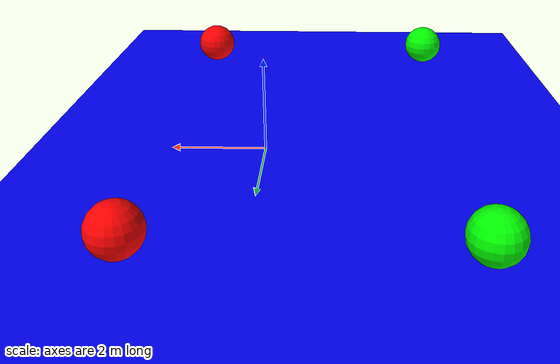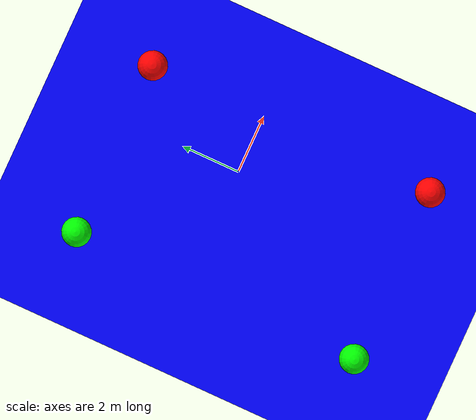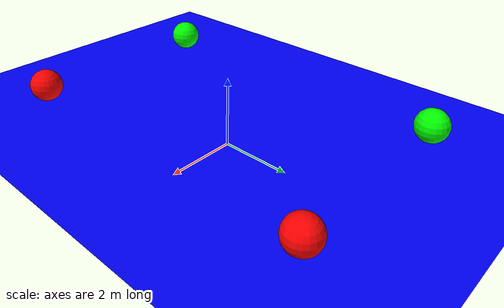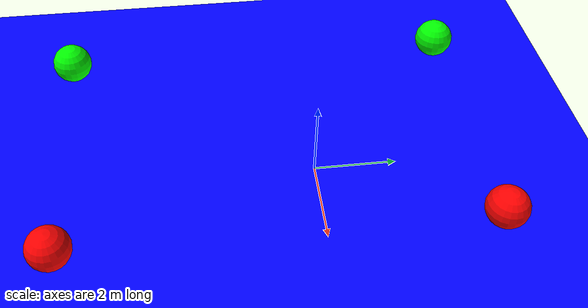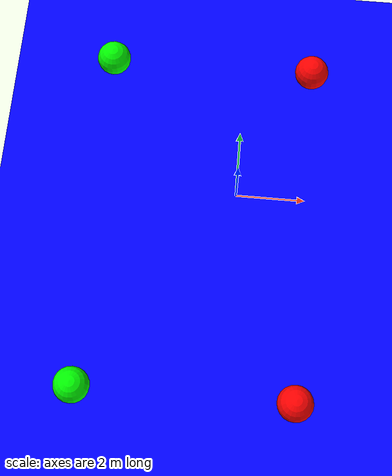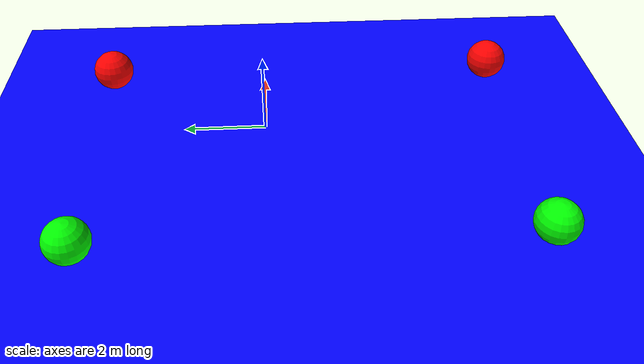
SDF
<sdf version='1.9'>
  <world name='task-1'>
    <physics name='1ms' type='ode'>
      <max_step_size>0.001</max_step_size>
      <real_time_factor>1</real_time_factor>
      <real_time_update_rate>1000</real_time_update_rate>
    </physics>
    <plugin name='ignition::gazebo::systems::Physics' filename='ignition-gazebo-physics-system'/>
    <plugin name='ignition::gazebo::systems::UserCommands' filename='ignition-gazebo-user-commands-system'/>
    <plugin name='ignition::gazebo::systems::SceneBroadcaster' filename='ignition-gazebo-scene-broadcaster-system'/>
    <plugin name='ignition::gazebo::systems::Buoyancy' filename='ignition-gazebo-buoyancy-system'>
      <graded_buoyancy>
        <default_density>1000</default_density>
        <density_change>
          <above_depth>0</above_depth>
          <density>1</density>
        </density_change>
      </graded_buoyancy>
      <enable>sphere</enable>
      <enable>sphere_0</enable>
      <enable>sphere_1</enable>
      <enable>sphere_2</enable>
    </plugin>
    <gravity>0 0 -9.8</gravity>
    <magnetic_field>6e-06 2.3e-05 -4.2e-05</magnetic_field>
    <atmosphere type='adiabatic'/>
    <scene>
      <ambient>0.4 0.4 0.4 1</ambient>
      <background>0.7 0.7 0.7 1</background>
      <shadows>true</shadows>
    </scene>
    <model name='water_plane'>
      <static>true</static>
      <link name='link'>
        <visual name='water_plane'>
          <geometry>
            <plane>
              <size>100 100</size>
              <normal>0 0 1</normal>
            </plane>
          </geometry>
          <material>
            <ambient>0 0 1 0.5</ambient>
            <diffuse>0 0 1 0.5</diffuse>
            <specular>0 0 1 0.5</specular>
          </material>
        </visual>
        <pose>0 0 0 0 -0 0</pose>
        <inertial>
          <pose>0 0 0 0 -0 0</pose>
          <mass>1</mass>
          <inertia>
            <ixx>1</ixx>
            <ixy>0</ixy>
            <ixz>0</ixz>
            <iyy>1</iyy>
            <iyz>0</iyz>
            <izz>1</izz>
          </inertia>
        </inertial>
        <enable_wind>false</enable_wind>
      </link>
      <pose>0 0 0 0 -0 0</pose>
      <self_collide>false</self_collide>
    </model>

    <model name='sphere'>
      <pose>-4 4 0.5 0 -0 0</pose>
      <link name='sphere_link'>
        <inertial>
          <inertia>
            <ixx>0.10000000000000001</ixx>
            <ixy>0</ixy>
            <ixz>0</ixz>
            <iyy>0.10000000000000001</iyy>
            <iyz>0</iyz>
            <izz>0.10000000000000001</izz>
          </inertia>
          <mass>25</mass>
          <pose>0 0 0 0 -0 0</pose>
        </inertial>
        <collision name='sphere_collision'>
          <geometry>
            <sphere>
              <radius>0.5</radius>
            </sphere>
          </geometry>
          <surface>
            <friction>
              <ode/>
            </friction>
            <bounce/>
            <contact/>
          </surface>
        </collision>
        <visual name='sphere_visual'>
          <geometry>
            <sphere>
              <radius>0.5</radius>
            </sphere>
          </geometry>
          <material>
            <ambient>0 1 0 1</ambient>
            <diffuse>0 1 0 1</diffuse>
            <specular>0 1 0 1</specular>
          </material>
        </visual>
        <pose>0 0 0 0 -0 0</pose>
        <enable_wind>false</enable_wind>
      </link>
      <static>false</static>
      <self_collide>false</self_collide>
    </model>

    <model name='sphere_0'>
      <pose>-4 -6 0.5 0 -0 0</pose>
      <link name='sphere_link'>
        <inertial>
          <inertia>
            <ixx>0.10000000000000001</ixx>
            <ixy>0</ixy>
            <ixz>0</ixz>
            <iyy>0.10000000000000001</iyy>
            <iyz>0</iyz>
            <izz>0.10000000000000001</izz>
          </inertia>
          <mass>25</mass>
          <pose>0 0 0 0 -0 0</pose>
        </inertial>
        <collision name='sphere_collision'>
          <geometry>
            <sphere>
              <radius>0.5</radius>
            </sphere>
          </geometry>
          <surface>
            <friction>
              <ode/>
            </friction>
            <bounce/>
            <contact/>
          </surface>
        </collision>
        <visual name='sphere_visual'>
          <geometry>
            <sphere>
              <radius>0.5</radius>
            </sphere>
          </geometry>
          <material>
            <ambient>0 1 0 1</ambient>`
            <diffuse>0 1 0 1</diffuse>
            <specular>0 1 0 1</specular>
          </material>
        </visual>
        <pose>0 0 0 0 -0 0</pose>
        <enable_wind>false</enable_wind>
      </link>
      <static>false</static>
      <self_collide>false</self_collide>
    </model>

    <model name='sphere_1'>
      <pose>2 4 0.5 0 -0 0</pose>
      <link name='sphere_link'>
        <inertial>
          <inertia>
            <ixx>0.10000000000000001</ixx>
            <ixy>0</ixy>
            <ixz>0</ixz>
            <iyy>0.10000000000000001</iyy>
            <iyz>0</iyz>
            <izz>0.10000000000000001</izz>
          </inertia>
          <mass>25</mass>
          <pose>0 0 0 0 -0 0</pose>
        </inertial>
        <collision name='sphere_collision'>
          <geometry>
            <sphere>
              <radius>0.5</radius>
            </sphere>
          </geometry>
          <surface>
            <friction>
              <ode/>
            </friction>
            <bounce/>
            <contact/>
          </surface>
        </collision>
        <visual name='sphere_visual'>
          <geometry>
            <sphere>
              <radius>0.5</radius>
            </sphere>
          </geometry>
          <material>
            <ambient>1 0 0 1</ambient>`
            <diffuse>1 0 0 1</diffuse>
            <specular>1 0 0 1</specular>
          </material>
        </visual>
        <pose>0 0 0 0 -0 0</pose>
        <enable_wind>false</enable_wind>
      </link>
      <static>false</static>
      <self_collide>false</self_collide>
    </model>

     <model name='sphere_2'>
      <pose>2 -6 0.5 0 -0 0</pose>
      <link name='sphere_link'>
        <inertial>
          <inertia>
            <ixx>0.10000000000000001</ixx>
            <ixy>0</ixy>
            <ixz>0</ixz>
            <iyy>0.10000000000000001</iyy>
            <iyz>0</iyz>
            <izz>0.10000000000000001</izz>
          </inertia>
          <mass>25</mass>
          <pose>0 0 0 0 -0 0</pose>
        </inertial>
        <collision name='sphere_collision'>
          <geometry>
            <sphere>
              <radius>0.5</radius>
            </sphere>
          </geometry>
          <surface>
            <friction>
              <ode/>
            </friction>
            <bounce/>
            <contact/>
          </surface>
        </collision>
        <visual name='sphere_visual'>
          <geometry>
            <sphere>
              <radius>0.5</radius>
            </sphere>
          </geometry>
          <material>
            <ambient>1 0 0 1</ambient>`
            <diffuse>1 0 0 1</diffuse>
            <specular>1 0 0 1</specular>
          </material>
        </visual>
        <pose>0 0 0 0 -0 0</pose>
        <enable_wind>false</enable_wind>
      </link>
      <static>false</static>
      <self_collide>false</self_collide>
    </model>

    <light name='sun' type='directional'>
      <pose>0 0 10 0 -0 0</pose>
      <cast_shadows>true</cast_shadows>
      <intensity>1</intensity>
      <direction>-0.5 0.1 -0.9</direction>
      <diffuse>1 1 1 1</diffuse>
      <specular>0.5 0.5 0.5 1</specular>
      <attenuation>
        <range>1000</range>
        <linear>0.01</linear>
        <constant>0.90000000000000002</constant>
        <quadratic>0.001</quadratic>
      </attenuation>
      <spot>
        <inner_angle>0</inner_angle>
        <outer_angle>0</outer_angle>
        <falloff>0</falloff>
      </spot>
    </light>

  </world>
</sdf>
